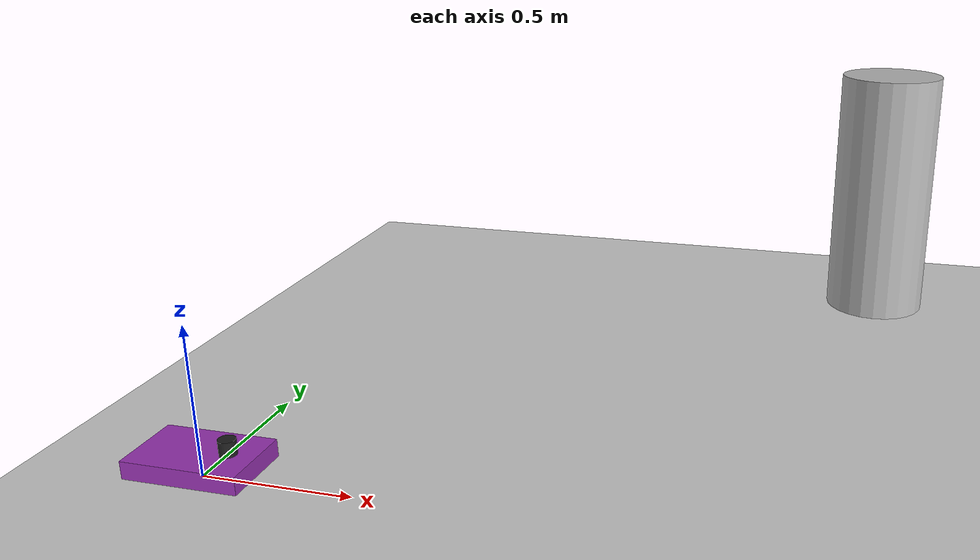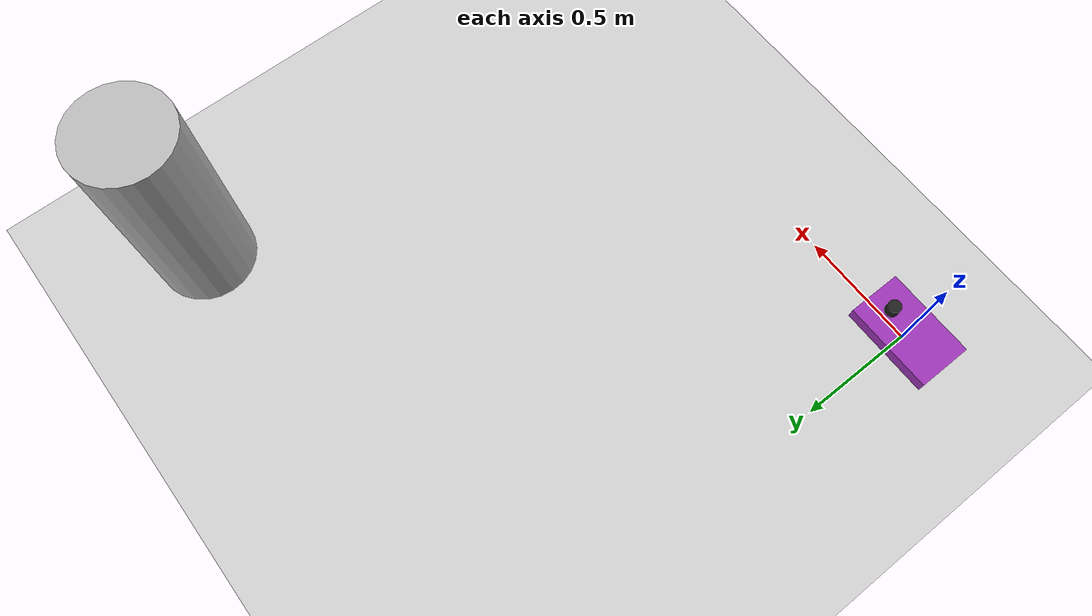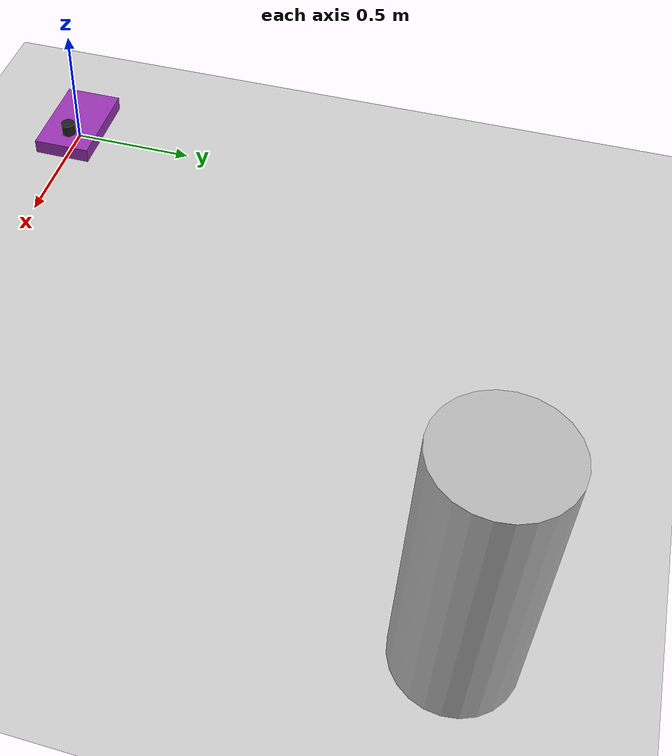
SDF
<?xml version="1.0"?>
<sdf version="1.6">
  <world name="default">

    <include>
      <uri>model://ground_plane</uri>
    </include>

    <include>
      <uri>model://sun</uri>
    </include>

    <model name="car">
      <pose>0 0 0.06 0 0 0</pose>
      <link name="base_link">
        <inertial>
          <mass>6.1</mass>
        </inertial>

        <collision name="collision">
          <geometry>
            <box>
              <size>0.386 0.236 0.12</size>
            </box>
          </geometry>
        </collision>

        <visual name="visual">
          <geometry>
            <box>
              <size>0.386 0.236 0.06</size>
            </box>
          </geometry>
          <material>
        	<script>
              <name>Gazebo/Purple</name>
            </script>
      	  </material>
        </visual>
      </link>

      <link name="laser_link">
        <pose>0.1 0 0.0555 0 0 0</pose>
        <inertial>
          <mass>0.105</mass>
        </inertial>

        <visual name="visual">
          <geometry>
            <cylinder>
              <radius>0.028</radius>
              <length>0.051</length>
            </cylinder>
          </geometry>
          <material>
        	<script>
              <name>Gazebo/Black</name>
            </script>
      	  </material>
        </visual>

        <sensor name="sensor_ray" type="ray">
          <ray>
            <scan>
              <horizontal>
                <samples>20</samples>
                <resolution>1.0</resolution>
                <min_angle>-1.5</min_angle>
                <max_angle>1.5</max_angle>
              </horizontal>
            </scan>
            <range>
              <min>0.05</min>
              <max>40</max>
            </range>
          </ray>
          <always_on>true</always_on>
          <update_rate>10.0</update_rate>
          <plugin name="pc2" filename="libgazebo_ros_ray_sensor.so">
            <ros>
              <namespace>/ray</namespace>
              <remapping>~/out:=pointcloud2</remapping>
            </ros>
            <output_type>sensor_msgs/PointCloud2</output_type>
          </plugin>
          <plugin name="pc" filename="libgazebo_ros_ray_sensor.so">
            <ros>
              <namespace>/ray</namespace>
              <remapping>~/out:=pointcloud</remapping>
            </ros>
            <output_type>sensor_msgs/PointCloud</output_type>
          </plugin>
          <plugin name="laserscan" filename="libgazebo_ros_ray_sensor.so">
            <ros>
              <namespace>/ray</namespace>
              <remapping>~/out:=laserscan</remapping>
            </ros>
            <output_type>sensor_msgs/LaserScan</output_type>
          </plugin>
          <plugin name="range" filename="libgazebo_ros_ray_sensor.so">
            <ros>
              <namespace>/ray</namespace>
              <remapping>~/out:=range</remapping>
            </ros>
            <output_type>sensor_msgs/Range</output_type>
          </plugin>
        </sensor>
      </link>

      <joint name='base_to_laser' type='fixed'>
        <parent>base_link</parent>
        <child>laser_link</child>
        <axis>
          <xyz>0 0 1</xyz>
        </axis>
      </joint>

      <plugin name='planar_move' filename='libgazebo_ros_planar_move.so'>
        <ros>
          <namespace>/car</namespace>
        </ros>

        <update_rate>100</update_rate>
        <publish_rate>10</publish_rate>

        <!-- output -->
        <publish_odom>true</publish_odom>
        <publish_odom_tf>true</publish_odom_tf>

        <odometry_frame>odom</odometry_frame>
        <robot_base_frame>base_link</robot_base_frame>

        <covariance_x>0.0001</covariance_x>
        <covariance_y>0.0001</covariance_y>
        <covariance_yaw>0.01</covariance_yaw>
      </plugin>
    </model>

    <model name="cylinder">
      <pose>2 2 0.5 0.0 0.0 0.0</pose>
      <link name="obs">
        <visual name="visual">
          <geometry>
            <cylinder>
              <radius>0.2</radius>
              <length>1</length>
            </cylinder>
          </geometry>
        </visual>
        <collision name="collision">
          <geometry>
            <cylinder>
              <radius>0.2</radius>
              <length>1</length>
            </cylinder>
          </geometry>
          <laser_retro>60.0</laser_retro>
        </collision>
      </link>
    </model>
  </world>
</sdf>
